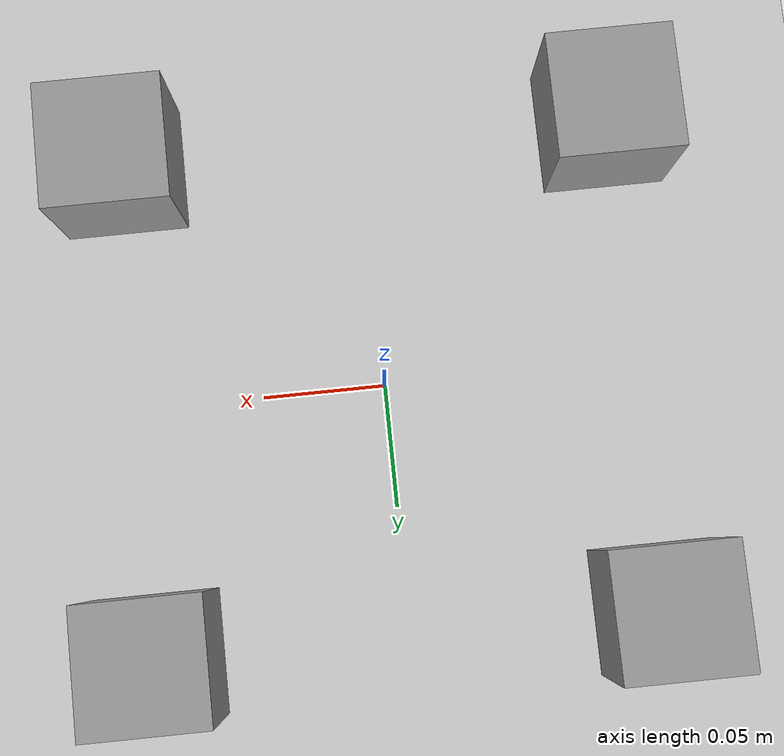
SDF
<?xml version="1.0" ?>
<sdf version="1.6">
  <world name="default">
    <include>
      <uri>model://ground_plane</uri>
    </include>
    <include>
      <uri>model://sun</uri>
    </include>

    <!-- Set up a camera close to the origin so we can actually see the tiny robot -->
    <gui fullscreen='0'>
      <camera name='user_camera'>
        <pose>0.3 -0.3 0.2 0 0.5 2.35</pose>
        <view_controller>orbit</view_controller>
        <projection_type>perspective</projection_type>
      </camera>
    </gui>

    <!-- 4 Small Boxes around the origin -->
    <model name='box1'>
      <pose>0.1 0.1 0.025 0 0 0</pose>
      <link name='link'>
        <collision name='collision'>
          <geometry><box><size>0.05 0.05 0.05</size></box></geometry>
        </collision>
        <visual name='visual'>
          <geometry><box><size>0.05 0.05 0.05</size></box></geometry>
          <material><script><name>Gazebo/Grey</name></script></material>
        </visual>
      </link>
    </model>
    <model name='box2'>
      <pose>0.1 -0.1 0.025 0 0 0</pose>
      <link name='link'>
        <collision name='collision'>
          <geometry><box><size>0.05 0.05 0.05</size></box></geometry>
        </collision>
        <visual name='visual'>
          <geometry><box><size>0.05 0.05 0.05</size></box></geometry>
          <material><script><name>Gazebo/Grey</name></script></material>
        </visual>
      </link>
    </model>
    <model name='box3'>
      <pose>-0.1 0.1 0.025 0 0 0</pose>
      <link name='link'>
        <collision name='collision'>
          <geometry><box><size>0.05 0.05 0.05</size></box></geometry>
        </collision>
        <visual name='visual'>
          <geometry><box><size>0.05 0.05 0.05</size></box></geometry>
          <material><script><name>Gazebo/Grey</name></script></material>
        </visual>
      </link>
    </model>
    <model name='box4'>
      <pose>-0.1 -0.1 0.025 0 0 0</pose>
      <link name='link'>
        <collision name='collision'>
          <geometry><box><size>0.05 0.05 0.05</size></box></geometry>
        </collision>
        <visual name='visual'>
          <geometry><box><size>0.05 0.05 0.05</size></box></geometry>
          <material><script><name>Gazebo/Grey</name></script></material>
        </visual>
      </link>
    </model>
  </world>
</sdf>
